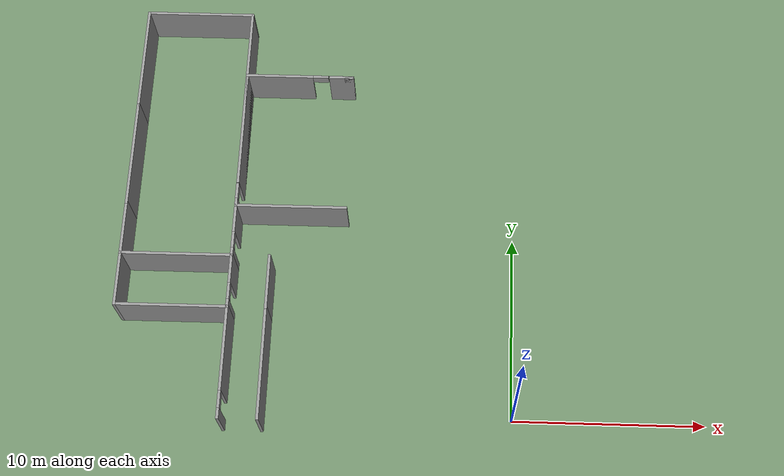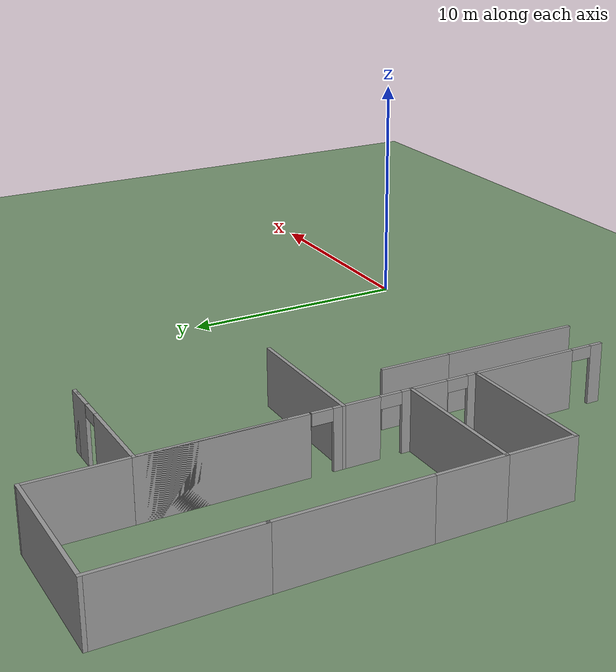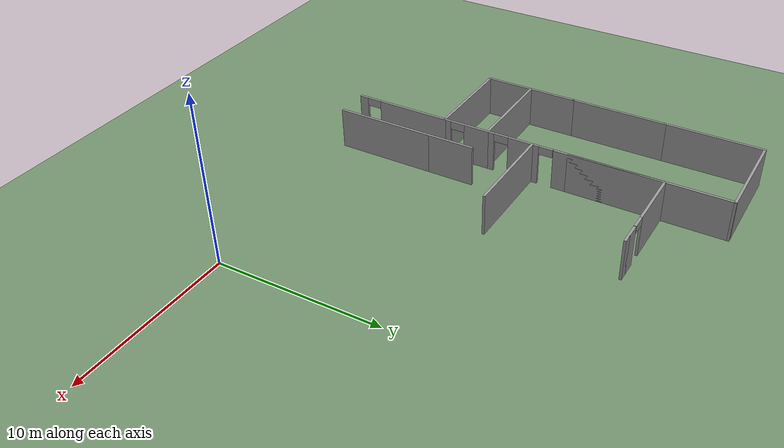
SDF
<sdf version="1.7">
 <world name="default">
  <model name="ground_plane">
   <static>1</static>
   <link name="link">
    <collision name="collision">
     <geometry><plane><normal>0 0 1</normal><size>600 600</size></plane></geometry>
     <surface>
      <contact><collide_bitmask>65535</collide_bitmask></contact>
      <friction><ode><mu>100</mu><mu2>50</mu2></ode></friction>
     </surface>
    </collision>
    <visual name="visual">
     <cast_shadows>0</cast_shadows>
     <geometry><plane><normal>0 0 1</normal><size>100 100</size></plane></geometry>
     <material><ambient>0.45 0.57 0.43 1</ambient><diffuse>0.45 0.57 0.43 1</diffuse></material>
    </visual>
   </link>
  </model>
  <model name="myhal_V3_2">
   <link name="Wall_339">
    <pose>-17.55 20.325 0 0 -0 3.14159</pose>
    <visual name="Wall_339_Visual">
     <pose>0 0 1.25 0 -0 0</pose>
     <geometry><box><size>6 0.15 2.5</size></box></geometry>
     <material>
      <script><uri>file://media/materials/scripts/gazebo.material</uri><name>Gazebo/Grey</name></script>
      <ambient>1 1 1 1</ambient>
      <shader type="pixel"/>
     </material>
     <meta><layer>0</layer></meta>
    </visual>
    <collision name="Wall_339_Collision">
     <pose>0 0 1.25 0 -0 0</pose>
     <geometry><box><size>6 0.15 2.5</size></box></geometry>
     <surface>
      <friction>
       <ode><mu>1</mu><mu2>1</mu2><fdir1>0 0 0</fdir1><slip1>0</slip1><slip2>0</slip2></ode>
       <torsional>
        <coefficient>1</coefficient>
        <patch_radius>0</patch_radius>
        <surface_radius>0</surface_radius>
        <use_patch_radius>1</use_patch_radius>
        <ode><slip>0</slip></ode>
       </torsional>
      </friction>
      <bounce><restitution_coefficient>0</restitution_coefficient><threshold>1e+06</threshold></bounce>
      <contact>
       <collide_without_contact>0</collide_without_contact>
       <collide_without_contact_bitmask>1</collide_without_contact_bitmask>
       <collide_bitmask>1</collide_bitmask>
       <ode>
        <soft_cfm>0</soft_cfm>
        <soft_erp>0.2</soft_erp>
        <kp>1e+13</kp>
        <kd>1</kd>
        <max_vel>0.01</max_vel>
        <min_depth>0</min_depth>
       </ode>
       <bullet>
        <split_impulse>1</split_impulse>
        <split_impulse_penetration_threshold>-0.01</split_impulse_penetration_threshold>
        <soft_cfm>0</soft_cfm>
        <soft_erp>0.2</soft_erp>
        <kp>1e+13</kp>
        <kd>1</kd>
       </bullet>
      </contact>
     </surface>
    </collision>
   </link>
   <link name="Wall_341">
    <pose>-20.475 17.4 0 0 0 -1.5708</pose>
    <visual name="Wall_341_Visual">
     <pose>0 0 1.25 0 -0 0</pose>
     <geometry><box><size>6 0.15 2.5</size></box></geometry>
     <material>
      <script><uri>file://media/materials/scripts/gazebo.material</uri><name>Gazebo/Grey</name></script>
      <ambient>1 1 1 1</ambient>
      <shader type="pixel"/>
     </material>
     <meta><layer>0</layer></meta>
    </visual>
    <collision name="Wall_341_Collision">
     <pose>0 0 1.25 0 -0 0</pose>
     <geometry><box><size>6 0.15 2.5</size></box></geometry>
     <surface>
      <friction>
       <ode><mu>1</mu><mu2>1</mu2><fdir1>0 0 0</fdir1><slip1>0</slip1><slip2>0</slip2></ode>
       <torsional>
        <coefficient>1</coefficient>
        <patch_radius>0</patch_radius>
        <surface_radius>0</surface_radius>
        <use_patch_radius>1</use_patch_radius>
        <ode><slip>0</slip></ode>
       </torsional>
      </friction>
      <bounce><restitution_coefficient>0</restitution_coefficient><threshold>1e+06</threshold></bounce>
      <contact>
       <collide_without_contact>0</collide_without_contact>
       <collide_without_contact_bitmask>1</collide_without_contact_bitmask>
       <collide_bitmask>1</collide_bitmask>
       <ode>
        <soft_cfm>0</soft_cfm>
        <soft_erp>0.2</soft_erp>
        <kp>1e+13</kp>
        <kd>1</kd>
        <max_vel>0.01</max_vel>
        <min_depth>0</min_depth>
       </ode>
       <bullet>
        <split_impulse>1</split_impulse>
        <split_impulse_penetration_threshold>-0.01</split_impulse_penetration_threshold>
        <soft_cfm>0</soft_cfm>
        <soft_erp>0.2</soft_erp>
        <kp>1e+13</kp>
        <kd>1</kd>
       </bullet>
      </contact>
     </surface>
    </collision>
   </link>
   <link name="Wall_342">
    <pose>-20.475 11.55 0 0 0 -1.5708</pose>
    <visual name="Wall_342_Visual">
     <pose>0 0 1.25 0 -0 0</pose>
     <geometry><box><size>6 0.15 2.5</size></box></geometry>
     <material>
      <script><uri>file://media/materials/scripts/gazebo.material</uri><name>Gazebo/Grey</name></script>
      <ambient>1 1 1 1</ambient>
      <shader type="pixel"/>
     </material>
     <meta><layer>0</layer></meta>
    </visual>
    <collision name="Wall_342_Collision">
     <pose>0 0 1.25 0 -0 0</pose>
     <geometry><box><size>6 0.15 2.5</size></box></geometry>
     <surface>
      <friction>
       <ode><mu>1</mu><mu2>1</mu2><fdir1>0 0 0</fdir1><slip1>0</slip1><slip2>0</slip2></ode>
       <torsional>
        <coefficient>1</coefficient>
        <patch_radius>0</patch_radius>
        <surface_radius>0</surface_radius>
        <use_patch_radius>1</use_patch_radius>
        <ode><slip>0</slip></ode>
       </torsional>
      </friction>
      <bounce><restitution_coefficient>0</restitution_coefficient><threshold>1e+06</threshold></bounce>
      <contact>
       <collide_without_contact>0</collide_without_contact>
       <collide_without_contact_bitmask>1</collide_without_contact_bitmask>
       <collide_bitmask>1</collide_bitmask>
       <ode>
        <soft_cfm>0</soft_cfm>
        <soft_erp>0.2</soft_erp>
        <kp>1e+13</kp>
        <kd>1</kd>
        <max_vel>0.01</max_vel>
        <min_depth>0</min_depth>
       </ode>
       <bullet>
        <split_impulse>1</split_impulse>
        <split_impulse_penetration_threshold>-0.01</split_impulse_penetration_threshold>
        <soft_cfm>0</soft_cfm>
        <soft_erp>0.2</soft_erp>
        <kp>1e+13</kp>
        <kd>1</kd>
       </bullet>
      </contact>
     </surface>
    </collision>
   </link>
   <link name="Wall_343">
    <pose>-20.475 7.2 0 0 0 -1.5708</pose>
    <visual name="Wall_343_Visual">
     <pose>0 0 1.25 0 -0 0</pose>
     <geometry><box><size>3 0.15 2.5</size></box></geometry>
     <material>
      <script><uri>file://media/materials/scripts/gazebo.material</uri><name>Gazebo/Grey</name></script>
      <ambient>1 1 1 1</ambient>
      <shader type="pixel"/>
     </material>
     <meta><layer>0</layer></meta>
    </visual>
    <collision name="Wall_343_Collision">
     <pose>0 0 1.25 0 -0 0</pose>
     <geometry><box><size>3 0.15 2.5</size></box></geometry>
     <surface>
      <friction>
       <ode><mu>1</mu><mu2>1</mu2><fdir1>0 0 0</fdir1><slip1>0</slip1><slip2>0</slip2></ode>
       <torsional>
        <coefficient>1</coefficient>
        <patch_radius>0</patch_radius>
        <surface_radius>0</surface_radius>
        <use_patch_radius>1</use_patch_radius>
        <ode><slip>0</slip></ode>
       </torsional>
      </friction>
      <bounce><restitution_coefficient>0</restitution_coefficient><threshold>1e+06</threshold></bounce>
      <contact>
       <collide_without_contact>0</collide_without_contact>
       <collide_without_contact_bitmask>1</collide_without_contact_bitmask>
       <collide_bitmask>1</collide_bitmask>
       <ode>
        <soft_cfm>0</soft_cfm>
        <soft_erp>0.2</soft_erp>
        <kp>1e+13</kp>
        <kd>1</kd>
        <max_vel>0.01</max_vel>
        <min_depth>0</min_depth>
       </ode>
       <bullet>
        <split_impulse>1</split_impulse>
        <split_impulse_penetration_threshold>-0.01</split_impulse_penetration_threshold>
        <soft_cfm>0</soft_cfm>
        <soft_erp>0.2</soft_erp>
        <kp>1e+13</kp>
        <kd>1</kd>
       </bullet>
      </contact>
     </surface>
    </collision>
   </link>
   <link name="Wall_344">
    <pose>-20.475 4.35 0 0 0 -1.5708</pose>
    <visual name="Wall_344_Visual">
     <pose>0 0 1.25 0 -0 0</pose>
     <geometry><box><size>3 0.15 2.5</size></box></geometry>
     <material>
      <script><uri>file://media/materials/scripts/gazebo.material</uri><name>Gazebo/Grey</name></script>
      <ambient>1 1 1 1</ambient>
      <shader type="pixel"/>
     </material>
     <meta><layer>0</layer></meta>
    </visual>
    <collision name="Wall_344_Collision">
     <pose>0 0 1.25 0 -0 0</pose>
     <geometry><box><size>3 0.15 2.5</size></box></geometry>
     <surface>
      <friction>
       <ode><mu>1</mu><mu2>1</mu2><fdir1>0 0 0</fdir1><slip1>0</slip1><slip2>0</slip2></ode>
       <torsional>
        <coefficient>1</coefficient>
        <patch_radius>0</patch_radius>
        <surface_radius>0</surface_radius>
        <use_patch_radius>1</use_patch_radius>
        <ode><slip>0</slip></ode>
       </torsional>
      </friction>
      <bounce><restitution_coefficient>0</restitution_coefficient><threshold>1e+06</threshold></bounce>
      <contact>
       <collide_without_contact>0</collide_without_contact>
       <collide_without_contact_bitmask>1</collide_without_contact_bitmask>
       <collide_bitmask>1</collide_bitmask>
       <ode>
        <soft_cfm>0</soft_cfm>
        <soft_erp>0.2</soft_erp>
        <kp>1e+13</kp>
        <kd>1</kd>
        <max_vel>0.01</max_vel>
        <min_depth>0</min_depth>
       </ode>
       <bullet>
        <split_impulse>1</split_impulse>
        <split_impulse_penetration_threshold>-0.01</split_impulse_penetration_threshold>
        <soft_cfm>0</soft_cfm>
        <soft_erp>0.2</soft_erp>
        <kp>1e+13</kp>
        <kd>1</kd>
       </bullet>
      </contact>
     </surface>
    </collision>
   </link>
   <link name="Wall_358">
    <pose>-14.625 18.4 0 0 -0 1.5708</pose>
    <visual name="Wall_358_Visual">
     <pose>0 0 1.25 0 -0 0</pose>
     <geometry><box><size>4 0.15 2.5</size></box></geometry>
     <material>
      <script><uri>file://media/materials/scripts/gazebo.material</uri><name>Gazebo/Grey</name></script>
      <ambient>1 1 1 1</ambient>
      <shader type="pixel"/>
     </material>
     <meta><layer>0</layer></meta>
    </visual>
    <collision name="Wall_358_Collision">
     <pose>0 0 1.25 0 -0 0</pose>
     <geometry><box><size>4 0.15 2.5</size></box></geometry>
     <surface>
      <friction>
       <ode><mu>1</mu><mu2>1</mu2><fdir1>0 0 0</fdir1><slip1>0</slip1><slip2>0</slip2></ode>
       <torsional>
        <coefficient>1</coefficient>
        <patch_radius>0</patch_radius>
        <surface_radius>0</surface_radius>
        <use_patch_radius>1</use_patch_radius>
        <ode><slip>0</slip></ode>
       </torsional>
      </friction>
      <bounce><restitution_coefficient>0</restitution_coefficient><threshold>1e+06</threshold></bounce>
      <contact>
       <collide_without_contact>0</collide_without_contact>
       <collide_without_contact_bitmask>1</collide_without_contact_bitmask>
       <collide_bitmask>1</collide_bitmask>
       <ode>
        <soft_cfm>0</soft_cfm>
        <soft_erp>0.2</soft_erp>
        <kp>1e+13</kp>
        <kd>1</kd>
        <max_vel>0.01</max_vel>
        <min_depth>0</min_depth>
       </ode>
       <bullet>
        <split_impulse>1</split_impulse>
        <split_impulse_penetration_threshold>-0.01</split_impulse_penetration_threshold>
        <soft_cfm>0</soft_cfm>
        <soft_erp>0.2</soft_erp>
        <kp>1e+13</kp>
        <kd>1</kd>
       </bullet>
      </contact>
     </surface>
    </collision>
   </link>
   <link name="Wall_360">
    <pose>-11.7 16.475 0 0 -0 0</pose>
    <visual name="Wall_360_Visual_0">
     <pose>-1.13429 0 1.25 0 -0 0</pose>
     <geometry><box><size>3.73142 0.15 2.5</size></box></geometry>
     <material>
      <script><uri>file://media/materials/scripts/gazebo.material</uri><name>Gazebo/Grey</name></script>
      <ambient>1 1 1 1</ambient>
      <shader type="pixel"/>
     </material>
     <meta><layer>0</layer></meta>
    </visual>
    <visual name="Wall_360_Visual_1">
     <pose>2.31571 0 1.25 0 -0 0</pose>
     <geometry><box><size>1.36858 0.15 2.5</size></box></geometry>
     <material>
      <script><uri>file://media/materials/scripts/gazebo.material</uri><name>Gazebo/Grey</name></script>
      <ambient>1 1 1 1</ambient>
      <shader type="pixel"/>
     </material>
     <meta><layer>0</layer></meta>
    </visual>
    <visual name="Wall_360_Visual_2">
     <pose>2.74704 0 1.25 0 -0 0</pose>
     <geometry><box><size>0.505924 0.15 2.5</size></box></geometry>
     <material>
      <script><uri>file://media/materials/scripts/gazebo.material</uri><name>Gazebo/Grey</name></script>
      <ambient>1 1 1 1</ambient>
      <shader type="pixel"/>
     </material>
     <meta><layer>0</layer></meta>
    </visual>
    <visual name="Wall_360_Visual_3">
     <pose>1.16275 0 2.25 0 -0 0</pose>
     <geometry><box><size>0.862653 0.15 0.5</size></box></geometry>
     <material>
      <script><uri>file://media/materials/scripts/gazebo.material</uri><name>Gazebo/Grey</name></script>
      <ambient>1 1 1 1</ambient>
      <shader type="pixel"/>
     </material>
     <meta><layer>0</layer></meta>
    </visual>
    <collision name="Wall_360_Collision_0">
     <pose>-1.13429 0 1.25 0 -0 0</pose>
     <geometry><box><size>3.73142 0.15 2.5</size></box></geometry>
     <surface>
      <friction>
       <ode><mu>1</mu><mu2>1</mu2><fdir1>0 0 0</fdir1><slip1>0</slip1><slip2>0</slip2></ode>
       <torsional>
        <coefficient>1</coefficient>
        <patch_radius>0</patch_radius>
        <surface_radius>0</surface_radius>
        <use_patch_radius>1</use_patch_radius>
        <ode><slip>0</slip></ode>
       </torsional>
      </friction>
      <bounce><restitution_coefficient>0</restitution_coefficient><threshold>1e+06</threshold></bounce>
      <contact>
       <collide_without_contact>0</collide_without_contact>
       <collide_without_contact_bitmask>1</collide_without_contact_bitmask>
       <collide_bitmask>1</collide_bitmask>
       <ode>
        <soft_cfm>0</soft_cfm>
        <soft_erp>0.2</soft_erp>
        <kp>1e+13</kp>
        <kd>1</kd>
        <max_vel>0.01</max_vel>
        <min_depth>0</min_depth>
       </ode>
       <bullet>
        <split_impulse>1</split_impulse>
        <split_impulse_penetration_threshold>-0.01</split_impulse_penetration_threshold>
        <soft_cfm>0</soft_cfm>
        <soft_erp>0.2</soft_erp>
        <kp>1e+13</kp>
        <kd>1</kd>
       </bullet>
      </contact>
     </surface>
    </collision>
    <collision name="Wall_360_Collision_1">
     <pose>2.31571 0 1.25 0 -0 0</pose>
     <geometry><box><size>1.36858 0.15 2.5</size></box></geometry>
     <surface>
      <friction>
       <ode><mu>1</mu><mu2>1</mu2><fdir1>0 0 0</fdir1><slip1>0</slip1><slip2>0</slip2></ode>
       <torsional>
        <coefficient>1</coefficient>
        <patch_radius>0</patch_radius>
        <surface_radius>0</surface_radius>
        <use_patch_radius>1</use_patch_radius>
        <ode><slip>0</slip></ode>
       </torsional>
      </friction>
      <bounce><restitution_coefficient>0</restitution_coefficient><threshold>1e+06</threshold></bounce>
      <contact>
       <collide_without_contact>0</collide_without_contact>
       <collide_without_contact_bitmask>1</collide_without_contact_bitmask>
       <collide_bitmask>1</collide_bitmask>
       <ode>
        <soft_cfm>0</soft_cfm>
        <soft_erp>0.2</soft_erp>
        <kp>1e+13</kp>
        <kd>1</kd>
        <max_vel>0.01</max_vel>
        <min_depth>0</min_depth>
       </ode>
       <bullet>
        <split_impulse>1</split_impulse>
        <split_impulse_penetration_threshold>-0.01</split_impulse_penetration_threshold>
        <soft_cfm>0</soft_cfm>
        <soft_erp>0.2</soft_erp>
        <kp>1e+13</kp>
        <kd>1</kd>
       </bullet>
      </contact>
     </surface>
    </collision>
    <collision name="Wall_360_Collision_2">
     <pose>2.74704 0 1.25 0 -0 0</pose>
     <geometry><box><size>0.505924 0.15 2.5</size></box></geometry>
     <surface>
      <friction>
       <ode><mu>1</mu><mu2>1</mu2><fdir1>0 0 0</fdir1><slip1>0</slip1><slip2>0</slip2></ode>
       <torsional>
        <coefficient>1</coefficient>
        <patch_radius>0</patch_radius>
        <surface_radius>0</surface_radius>
        <use_patch_radius>1</use_patch_radius>
        <ode><slip>0</slip></ode>
       </torsional>
      </friction>
      <bounce><restitution_coefficient>0</restitution_coefficient><threshold>1e+06</threshold></bounce>
      <contact>
       <collide_without_contact>0</collide_without_contact>
       <collide_without_contact_bitmask>1</collide_without_contact_bitmask>
       <collide_bitmask>1</collide_bitmask>
       <ode>
        <soft_cfm>0</soft_cfm>
        <soft_erp>0.2</soft_erp>
        <kp>1e+13</kp>
        <kd>1</kd>
        <max_vel>0.01</max_vel>
        <min_depth>0</min_depth>
       </ode>
       <bullet>
        <split_impulse>1</split_impulse>
        <split_impulse_penetration_threshold>-0.01</split_impulse_penetration_threshold>
        <soft_cfm>0</soft_cfm>
        <soft_erp>0.2</soft_erp>
        <kp>1e+13</kp>
        <kd>1</kd>
       </bullet>
      </contact>
     </surface>
    </collision>
    <collision name="Wall_360_Collision_3">
     <pose>1.16275 0 2.25 0 -0 0</pose>
     <geometry><box><size>0.862653 0.15 0.5</size></box></geometry>
     <surface>
      <friction>
       <ode><mu>1</mu><mu2>1</mu2><fdir1>0 0 0</fdir1><slip1>0</slip1><slip2>0</slip2></ode>
       <torsional>
        <coefficient>1</coefficient>
        <patch_radius>0</patch_radius>
        <surface_radius>0</surface_radius>
        <use_patch_radius>1</use_patch_radius>
        <ode><slip>0</slip></ode>
       </torsional>
      </friction>
      <bounce><restitution_coefficient>0</restitution_coefficient><threshold>1e+06</threshold></bounce>
      <contact>
       <collide_without_contact>0</collide_without_contact>
       <collide_without_contact_bitmask>1</collide_without_contact_bitmask>
       <collide_bitmask>1</collide_bitmask>
       <ode>
        <soft_cfm>0</soft_cfm>
        <soft_erp>0.2</soft_erp>
        <kp>1e+13</kp>
        <kd>1</kd>
        <max_vel>0.01</max_vel>
        <min_depth>0</min_depth>
       </ode>
       <bullet>
        <split_impulse>1</split_impulse>
        <split_impulse_penetration_threshold>-0.01</split_impulse_penetration_threshold>
        <soft_cfm>0</soft_cfm>
        <soft_erp>0.2</soft_erp>
        <kp>1e+13</kp>
        <kd>1</kd>
       </bullet>
      </contact>
     </surface>
    </collision>
   </link>
   <link name="Wall_363">
    <pose>-11.7 8.625 0 0 -0 3.14159</pose>
    <visual name="Wall_363_Visual">
     <pose>0 0 1.25 0 -0 0</pose>
     <geometry><box><size>6 0.15 2.5</size></box></geometry>
     <material>
      <script><uri>file://media/materials/scripts/gazebo.material</uri><name>Gazebo/Grey</name></script>
      <ambient>1 1 1 1</ambient>
      <shader type="pixel"/>
     </material>
     <meta><layer>0</layer></meta>
    </visual>
    <collision name="Wall_363_Collision">
     <pose>0 0 1.25 0 -0 0</pose>
     <geometry><box><size>6 0.15 2.5</size></box></geometry>
     <surface>
      <friction>
       <ode><mu>1</mu><mu2>1</mu2><fdir1>0 0 0</fdir1><slip1>0</slip1><slip2>0</slip2></ode>
       <torsional>
        <coefficient>1</coefficient>
        <patch_radius>0</patch_radius>
        <surface_radius>0</surface_radius>
        <use_patch_radius>1</use_patch_radius>
        <ode><slip>0</slip></ode>
       </torsional>
      </friction>
      <bounce><restitution_coefficient>0</restitution_coefficient><threshold>1e+06</threshold></bounce>
      <contact>
       <collide_without_contact>0</collide_without_contact>
       <collide_without_contact_bitmask>1</collide_without_contact_bitmask>
       <collide_bitmask>1</collide_bitmask>
       <ode>
        <soft_cfm>0</soft_cfm>
        <soft_erp>0.2</soft_erp>
        <kp>1e+13</kp>
        <kd>1</kd>
        <max_vel>0.01</max_vel>
        <min_depth>0</min_depth>
       </ode>
       <bullet>
        <split_impulse>1</split_impulse>
        <split_impulse_penetration_threshold>-0.01</split_impulse_penetration_threshold>
        <soft_cfm>0</soft_cfm>
        <soft_erp>0.2</soft_erp>
        <kp>1e+13</kp>
        <kd>1</kd>
       </bullet>
      </contact>
     </surface>
    </collision>
   </link>
   <link name="Wall_364">
    <pose>-14.625 12.55 0 0 -0 1.5708</pose>
    <visual name="Wall_364_Visual_0">
     <pose>-3.75018 0 1.25 0 -0 0</pose>
     <geometry><box><size>0.499636 0.15 2.5</size></box></geometry>
     <material>
      <script><uri>file://media/materials/scripts/gazebo.material</uri><name>Gazebo/Grey</name></script>
      <ambient>1 1 1 1</ambient>
      <shader type="pixel"/>
     </material>
     <meta><layer>0</layer></meta>
    </visual>
    <visual name="Wall_364_Visual_1">
     <pose>0.699818 0 1.25 0 -0 0</pose>
     <geometry><box><size>6.60036 0.15 2.5</size></box></geometry>
     <material>
      <script><uri>file://media/materials/scripts/gazebo.material</uri><name>Gazebo/Grey</name></script>
      <ambient>1 1 1 1</ambient>
      <shader type="pixel"/>
     </material>
     <meta><layer>0</layer></meta>
    </visual>
    <visual name="Wall_364_Visual_2">
     <pose>1.13114 0 1.25 0 -0 0</pose>
     <geometry><box><size>5.73771 0.15 2.5</size></box></geometry>
     <material>
      <script><uri>file://media/materials/scripts/gazebo.material</uri><name>Gazebo/Grey</name></script>
      <ambient>1 1 1 1</ambient>
      <shader type="pixel"/>
     </material>
     <meta><layer>0</layer></meta>
    </visual>
    <visual name="Wall_364_Visual_3">
     <pose>-3.06904 0 2.25 0 -0 0</pose>
     <geometry><box><size>0.862653 0.15 0.5</size></box></geometry>
     <material>
      <script><uri>file://media/materials/scripts/gazebo.material</uri><name>Gazebo/Grey</name></script>
      <ambient>1 1 1 1</ambient>
      <shader type="pixel"/>
     </material>
     <meta><layer>0</layer></meta>
    </visual>
    <collision name="Wall_364_Collision_0">
     <pose>-3.75018 0 1.25 0 -0 0</pose>
     <geometry><box><size>0.499636 0.15 2.5</size></box></geometry>
     <surface>
      <friction>
       <ode><mu>1</mu><mu2>1</mu2><fdir1>0 0 0</fdir1><slip1>0</slip1><slip2>0</slip2></ode>
       <torsional>
        <coefficient>1</coefficient>
        <patch_radius>0</patch_radius>
        <surface_radius>0</surface_radius>
        <use_patch_radius>1</use_patch_radius>
        <ode><slip>0</slip></ode>
       </torsional>
      </friction>
      <bounce><restitution_coefficient>0</restitution_coefficient><threshold>1e+06</threshold></bounce>
      <contact>
       <collide_without_contact>0</collide_without_contact>
       <collide_without_contact_bitmask>1</collide_without_contact_bitmask>
       <collide_bitmask>1</collide_bitmask>
       <ode>
        <soft_cfm>0</soft_cfm>
        <soft_erp>0.2</soft_erp>
        <kp>1e+13</kp>
        <kd>1</kd>
        <max_vel>0.01</max_vel>
        <min_depth>0</min_depth>
       </ode>
       <bullet>
        <split_impulse>1</split_impulse>
        <split_impulse_penetration_threshold>-0.01</split_impulse_penetration_threshold>
        <soft_cfm>0</soft_cfm>
        <soft_erp>0.2</soft_erp>
        <kp>1e+13</kp>
        <kd>1</kd>
       </bullet>
      </contact>
     </surface>
    </collision>
    <collision name="Wall_364_Collision_1">
     <pose>0.699818 0 1.25 0 -0 0</pose>
     <geometry><box><size>6.60036 0.15 2.5</size></box></geometry>
     <surface>
      <friction>
       <ode><mu>1</mu><mu2>1</mu2><fdir1>0 0 0</fdir1><slip1>0</slip1><slip2>0</slip2></ode>
       <torsional>
        <coefficient>1</coefficient>
        <patch_radius>0</patch_radius>
        <surface_radius>0</surface_radius>
        <use_patch_radius>1</use_patch_radius>
        <ode><slip>0</slip></ode>
       </torsional>
      </friction>
      <bounce><restitution_coefficient>0</restitution_coefficient><threshold>1e+06</threshold></bounce>
      <contact>
       <collide_without_contact>0</collide_without_contact>
       <collide_without_contact_bitmask>1</collide_without_contact_bitmask>
       <collide_bitmask>1</collide_bitmask>
       <ode>
        <soft_cfm>0</soft_cfm>
        <soft_erp>0.2</soft_erp>
        <kp>1e+13</kp>
        <kd>1</kd>
        <max_vel>0.01</max_vel>
        <min_depth>0</min_depth>
       </ode>
       <bullet>
        <split_impulse>1</split_impulse>
        <split_impulse_penetration_threshold>-0.01</split_impulse_penetration_threshold>
        <soft_cfm>0</soft_cfm>
        <soft_erp>0.2</soft_erp>
        <kp>1e+13</kp>
        <kd>1</kd>
       </bullet>
      </contact>
     </surface>
    </collision>
    <collision name="Wall_364_Collision_2">
     <pose>1.13114 0 1.25 0 -0 0</pose>
     <geometry><box><size>5.73771 0.15 2.5</size></box></geometry>
     <surface>
      <friction>
       <ode><mu>1</mu><mu2>1</mu2><fdir1>0 0 0</fdir1><slip1>0</slip1><slip2>0</slip2></ode>
       <torsional>
        <coefficient>1</coefficient>
        <patch_radius>0</patch_radius>
        <surface_radius>0</surface_radius>
        <use_patch_radius>1</use_patch_radius>
        <ode><slip>0</slip></ode>
       </torsional>
      </friction>
      <bounce><restitution_coefficient>0</restitution_coefficient><threshold>1e+06</threshold></bounce>
      <contact>
       <collide_without_contact>0</collide_without_contact>
       <collide_without_contact_bitmask>1</collide_without_contact_bitmask>
       <collide_bitmask>1</collide_bitmask>
       <ode>
        <soft_cfm>0</soft_cfm>
        <soft_erp>0.2</soft_erp>
        <kp>1e+13</kp>
        <kd>1</kd>
        <max_vel>0.01</max_vel>
        <min_depth>0</min_depth>
       </ode>
       <bullet>
        <split_impulse>1</split_impulse>
        <split_impulse_penetration_threshold>-0.01</split_impulse_penetration_threshold>
        <soft_cfm>0</soft_cfm>
        <soft_erp>0.2</soft_erp>
        <kp>1e+13</kp>
        <kd>1</kd>
       </bullet>
      </contact>
     </surface>
    </collision>
    <collision name="Wall_364_Collision_3">
     <pose>-3.06904 0 2.25 0 -0 0</pose>
     <geometry><box><size>0.862653 0.15 0.5</size></box></geometry>
     <surface>
      <friction>
       <ode><mu>1</mu><mu2>1</mu2><fdir1>0 0 0</fdir1><slip1>0</slip1><slip2>0</slip2></ode>
       <torsional>
        <coefficient>1</coefficient>
        <patch_radius>0</patch_radius>
        <surface_radius>0</surface_radius>
        <use_patch_radius>1</use_patch_radius>
        <ode><slip>0</slip></ode>
       </torsional>
      </friction>
      <bounce><restitution_coefficient>0</restitution_coefficient><threshold>1e+06</threshold></bounce>
      <contact>
       <collide_without_contact>0</collide_without_contact>
       <collide_without_contact_bitmask>1</collide_without_contact_bitmask>
       <collide_bitmask>1</collide_bitmask>
       <ode>
        <soft_cfm>0</soft_cfm>
        <soft_erp>0.2</soft_erp>
        <kp>1e+13</kp>
        <kd>1</kd>
        <max_vel>0.01</max_vel>
        <min_depth>0</min_depth>
       </ode>
       <bullet>
        <split_impulse>1</split_impulse>
        <split_impulse_penetration_threshold>-0.01</split_impulse_penetration_threshold>
        <soft_cfm>0</soft_cfm>
        <soft_erp>0.2</soft_erp>
        <kp>1e+13</kp>
        <kd>1</kd>
       </bullet>
      </contact>
     </surface>
    </collision>
   </link>
   <link name="Wall_402">
    <pose>-14.625 7.2 0 0 0 -1.5708</pose>
    <visual name="Wall_402_Visual_0">
     <pose>-0.707028 0 1.25 0 -0 0</pose>
     <geometry><box><size>1.58594 0.15 2.5</size></box></geometry>
     <material>
      <script><uri>file://media/materials/scripts/gazebo.material</uri><name>Gazebo/Grey</name></script>
      <ambient>1 1 1 1</ambient>
      <shader type="pixel"/>
     </material>
     <meta><layer>0</layer></meta>
    </visual>
    <visual name="Wall_402_Visual_1">
     <pose>1.24297 0 1.25 0 -0 0</pose>
     <geometry><box><size>0.514056 0.15 2.5</size></box></geometry>
     <material>
      <script><uri>file://media/materials/scripts/gazebo.material</uri><name>Gazebo/Grey</name></script>
      <ambient>1 1 1 1</ambient>
      <shader type="pixel"/>
     </material>
     <meta><layer>0</layer></meta>
    </visual>
    <visual name="Wall_402_Visual_2">
     <pose>0.535944 0 2.25 0 -0 0</pose>
     <geometry><box><size>0.9 0.15 0.5</size></box></geometry>
     <material>
      <script><uri>file://media/materials/scripts/gazebo.material</uri><name>Gazebo/Grey</name></script>
      <ambient>1 1 1 1</ambient>
      <shader type="pixel"/>
     </material>
     <meta><layer>0</layer></meta>
    </visual>
    <collision name="Wall_402_Collision_0">
     <pose>-0.707028 0 1.25 0 -0 0</pose>
     <geometry><box><size>1.58594 0.15 2.5</size></box></geometry>
     <surface>
      <friction>
       <ode><mu>1</mu><mu2>1</mu2><fdir1>0 0 0</fdir1><slip1>0</slip1><slip2>0</slip2></ode>
       <torsional>
        <coefficient>1</coefficient>
        <patch_radius>0</patch_radius>
        <surface_radius>0</surface_radius>
        <use_patch_radius>1</use_patch_radius>
        <ode><slip>0</slip></ode>
       </torsional>
      </friction>
      <bounce><restitution_coefficient>0</restitution_coefficient><threshold>1e+06</threshold></bounce>
      <contact>
       <collide_without_contact>0</collide_without_contact>
       <collide_without_contact_bitmask>1</collide_without_contact_bitmask>
       <collide_bitmask>1</collide_bitmask>
       <ode>
        <soft_cfm>0</soft_cfm>
        <soft_erp>0.2</soft_erp>
        <kp>1e+13</kp>
        <kd>1</kd>
        <max_vel>0.01</max_vel>
        <min_depth>0</min_depth>
       </ode>
       <bullet>
        <split_impulse>1</split_impulse>
        <split_impulse_penetration_threshold>-0.01</split_impulse_penetration_threshold>
        <soft_cfm>0</soft_cfm>
        <soft_erp>0.2</soft_erp>
        <kp>1e+13</kp>
        <kd>1</kd>
       </bullet>
      </contact>
     </surface>
    </collision>
    <collision name="Wall_402_Collision_1">
     <pose>1.24297 0 1.25 0 -0 0</pose>
     <geometry><box><size>0.514056 0.15 2.5</size></box></geometry>
     <surface>
      <friction>
       <ode><mu>1</mu><mu2>1</mu2><fdir1>0 0 0</fdir1><slip1>0</slip1><slip2>0</slip2></ode>
       <torsional>
        <coefficient>1</coefficient>
        <patch_radius>0</patch_radius>
        <surface_radius>0</surface_radius>
        <use_patch_radius>1</use_patch_radius>
        <ode><slip>0</slip></ode>
       </torsional>
      </friction>
      <bounce><restitution_coefficient>0</restitution_coefficient><threshold>1e+06</threshold></bounce>
      <contact>
       <collide_without_contact>0</collide_without_contact>
       <collide_without_contact_bitmask>1</collide_without_contact_bitmask>
       <collide_bitmask>1</collide_bitmask>
       <ode>
        <soft_cfm>0</soft_cfm>
        <soft_erp>0.2</soft_erp>
        <kp>1e+13</kp>
        <kd>1</kd>
        <max_vel>0.01</max_vel>
        <min_depth>0</min_depth>
       </ode>
       <bullet>
        <split_impulse>1</split_impulse>
        <split_impulse_penetration_threshold>-0.01</split_impulse_penetration_threshold>
        <soft_cfm>0</soft_cfm>
        <soft_erp>0.2</soft_erp>
        <kp>1e+13</kp>
        <kd>1</kd>
       </bullet>
      </contact>
     </surface>
    </collision>
    <collision name="Wall_402_Collision_2">
     <pose>0.535944 0 2.25 0 -0 0</pose>
     <geometry><box><size>0.9 0.15 0.5</size></box></geometry>
     <surface>
      <friction>
       <ode><mu>1</mu><mu2>1</mu2><fdir1>0 0 0</fdir1><slip1>0</slip1><slip2>0</slip2></ode>
       <torsional>
        <coefficient>1</coefficient>
        <patch_radius>0</patch_radius>
        <surface_radius>0</surface_radius>
        <use_patch_radius>1</use_patch_radius>
        <ode><slip>0</slip></ode>
       </torsional>
      </friction>
      <bounce><restitution_coefficient>0</restitution_coefficient><threshold>1e+06</threshold></bounce>
      <contact>
       <collide_without_contact>0</collide_without_contact>
       <collide_without_contact_bitmask>1</collide_without_contact_bitmask>
       <collide_bitmask>1</collide_bitmask>
       <ode>
        <soft_cfm>0</soft_cfm>
        <soft_erp>0.2</soft_erp>
        <kp>1e+13</kp>
        <kd>1</kd>
        <max_vel>0.01</max_vel>
        <min_depth>0</min_depth>
       </ode>
       <bullet>
        <split_impulse>1</split_impulse>
        <split_impulse_penetration_threshold>-0.01</split_impulse_penetration_threshold>
        <soft_cfm>0</soft_cfm>
        <soft_erp>0.2</soft_erp>
        <kp>1e+13</kp>
        <kd>1</kd>
       </bullet>
      </contact>
     </surface>
    </collision>
   </link>
   <link name="Wall_403">
    <pose>-17.55 5.775 0 0 -0 3.14159</pose>
    <visual name="Wall_403_Visual">
     <pose>0 0 1.25 0 -0 0</pose>
     <geometry><box><size>6 0.15 2.5</size></box></geometry>
     <material>
      <script><uri>file://media/materials/scripts/gazebo.material</uri><name>Gazebo/Grey</name></script>
      <ambient>1 1 1 1</ambient>
      <shader type="pixel"/>
     </material>
     <meta><layer>0</layer></meta>
    </visual>
    <collision name="Wall_403_Collision">
     <pose>0 0 1.25 0 -0 0</pose>
     <geometry><box><size>6 0.15 2.5</size></box></geometry>
     <surface>
      <friction>
       <ode><mu>1</mu><mu2>1</mu2><fdir1>0 0 0</fdir1><slip1>0</slip1><slip2>0</slip2></ode>
       <torsional>
        <coefficient>1</coefficient>
        <patch_radius>0</patch_radius>
        <surface_radius>0</surface_radius>
        <use_patch_radius>1</use_patch_radius>
        <ode><slip>0</slip></ode>
       </torsional>
      </friction>
      <bounce><restitution_coefficient>0</restitution_coefficient><threshold>1e+06</threshold></bounce>
      <contact>
       <collide_without_contact>0</collide_without_contact>
       <collide_without_contact_bitmask>1</collide_without_contact_bitmask>
       <collide_bitmask>1</collide_bitmask>
       <ode>
        <soft_cfm>0</soft_cfm>
        <soft_erp>0.2</soft_erp>
        <kp>1e+13</kp>
        <kd>1</kd>
        <max_vel>0.01</max_vel>
        <min_depth>0</min_depth>
       </ode>
       <bullet>
        <split_impulse>1</split_impulse>
        <split_impulse_penetration_threshold>-0.01</split_impulse_penetration_threshold>
        <soft_cfm>0</soft_cfm>
        <soft_erp>0.2</soft_erp>
        <kp>1e+13</kp>
        <kd>1</kd>
       </bullet>
      </contact>
     </surface>
    </collision>
   </link>
   <link name="Wall_405">
    <pose>-14.625 4.35 0 0 0 -1.5708</pose>
    <visual name="Wall_405_Visual_0">
     <pose>-0.698064 0 1.25 0 -0 0</pose>
     <geometry><box><size>1.60387 0.15 2.5</size></box></geometry>
     <material>
      <script><uri>file://media/materials/scripts/gazebo.material</uri><name>Gazebo/Grey</name></script>
      <ambient>1 1 1 1</ambient>
      <shader type="pixel"/>
     </material>
     <meta><layer>0</layer></meta>
    </visual>
    <visual name="Wall_405_Visual_1">
     <pose>1.25194 0 1.25 0 -0 0</pose>
     <geometry><box><size>0.496128 0.15 2.5</size></box></geometry>
     <material>
      <script><uri>file://media/materials/scripts/gazebo.material</uri><name>Gazebo/Grey</name></script>
      <ambient>1 1 1 1</ambient>
      <shader type="pixel"/>
     </material>
     <meta><layer>0</layer></meta>
    </visual>
    <visual name="Wall_405_Visual_2">
     <pose>0.553872 0 2.25 0 -0 0</pose>
     <geometry><box><size>0.9 0.15 0.5</size></box></geometry>
     <material>
      <script><uri>file://media/materials/scripts/gazebo.material</uri><name>Gazebo/Grey</name></script>
      <ambient>1 1 1 1</ambient>
      <shader type="pixel"/>
     </material>
     <meta><layer>0</layer></meta>
    </visual>
    <collision name="Wall_405_Collision_0">
     <pose>-0.698064 0 1.25 0 -0 0</pose>
     <geometry><box><size>1.60387 0.15 2.5</size></box></geometry>
     <surface>
      <friction>
       <ode><mu>1</mu><mu2>1</mu2><fdir1>0 0 0</fdir1><slip1>0</slip1><slip2>0</slip2></ode>
       <torsional>
        <coefficient>1</coefficient>
        <patch_radius>0</patch_radius>
        <surface_radius>0</surface_radius>
        <use_patch_radius>1</use_patch_radius>
        <ode><slip>0</slip></ode>
       </torsional>
      </friction>
      <bounce><restitution_coefficient>0</restitution_coefficient><threshold>1e+06</threshold></bounce>
      <contact>
       <collide_without_contact>0</collide_without_contact>
       <collide_without_contact_bitmask>1</collide_without_contact_bitmask>
       <collide_bitmask>1</collide_bitmask>
       <ode>
        <soft_cfm>0</soft_cfm>
        <soft_erp>0.2</soft_erp>
        <kp>1e+13</kp>
        <kd>1</kd>
        <max_vel>0.01</max_vel>
        <min_depth>0</min_depth>
       </ode>
       <bullet>
        <split_impulse>1</split_impulse>
        <split_impulse_penetration_threshold>-0.01</split_impulse_penetration_threshold>
        <soft_cfm>0</soft_cfm>
        <soft_erp>0.2</soft_erp>
        <kp>1e+13</kp>
        <kd>1</kd>
       </bullet>
      </contact>
     </surface>
    </collision>
    <collision name="Wall_405_Collision_1">
     <pose>1.25194 0 1.25 0 -0 0</pose>
     <geometry><box><size>0.496128 0.15 2.5</size></box></geometry>
     <surface>
      <friction>
       <ode><mu>1</mu><mu2>1</mu2><fdir1>0 0 0</fdir1><slip1>0</slip1><slip2>0</slip2></ode>
       <torsional>
        <coefficient>1</coefficient>
        <patch_radius>0</patch_radius>
        <surface_radius>0</surface_radius>
        <use_patch_radius>1</use_patch_radius>
        <ode><slip>0</slip></ode>
       </torsional>
      </friction>
      <bounce><restitution_coefficient>0</restitution_coefficient><threshold>1e+06</threshold></bounce>
      <contact>
       <collide_without_contact>0</collide_without_contact>
       <collide_without_contact_bitmask>1</collide_without_contact_bitmask>
       <collide_bitmask>1</collide_bitmask>
       <ode>
        <soft_cfm>0</soft_cfm>
        <soft_erp>0.2</soft_erp>
        <kp>1e+13</kp>
        <kd>1</kd>
        <max_vel>0.01</max_vel>
        <min_depth>0</min_depth>
       </ode>
       <bullet>
        <split_impulse>1</split_impulse>
        <split_impulse_penetration_threshold>-0.01</split_impulse_penetration_threshold>
        <soft_cfm>0</soft_cfm>
        <soft_erp>0.2</soft_erp>
        <kp>1e+13</kp>
        <kd>1</kd>
       </bullet>
      </contact>
     </surface>
    </collision>
    <collision name="Wall_405_Collision_2">
     <pose>0.553872 0 2.25 0 -0 0</pose>
     <geometry><box><size>0.9 0.15 0.5</size></box></geometry>
     <surface>
      <friction>
       <ode><mu>1</mu><mu2>1</mu2><fdir1>0 0 0</fdir1><slip1>0</slip1><slip2>0</slip2></ode>
       <torsional>
        <coefficient>1</coefficient>
        <patch_radius>0</patch_radius>
        <surface_radius>0</surface_radius>
        <use_patch_radius>1</use_patch_radius>
        <ode><slip>0</slip></ode>
       </torsional>
      </friction>
      <bounce><restitution_coefficient>0</restitution_coefficient><threshold>1e+06</threshold></bounce>
      <contact>
       <collide_without_contact>0</collide_without_contact>
       <collide_without_contact_bitmask>1</collide_without_contact_bitmask>
       <collide_bitmask>1</collide_bitmask>
       <ode>
        <soft_cfm>0</soft_cfm>
        <soft_erp>0.2</soft_erp>
        <kp>1e+13</kp>
        <kd>1</kd>
        <max_vel>0.01</max_vel>
        <min_depth>0</min_depth>
       </ode>
       <bullet>
        <split_impulse>1</split_impulse>
        <split_impulse_penetration_threshold>-0.01</split_impulse_penetration_threshold>
        <soft_cfm>0</soft_cfm>
        <soft_erp>0.2</soft_erp>
        <kp>1e+13</kp>
        <kd>1</kd>
       </bullet>
      </contact>
     </surface>
    </collision>
   </link>
   <link name="Wall_406">
    <pose>-17.55 2.925 0 0 -0 3.14159</pose>
    <visual name="Wall_406_Visual">
     <pose>0 0 1.25 0 -0 0</pose>
     <geometry><box><size>6 0.15 2.5</size></box></geometry>
     <material>
      <script><uri>file://media/materials/scripts/gazebo.material</uri><name>Gazebo/Grey</name></script>
      <ambient>1 1 1 1</ambient>
      <shader type="pixel"/>
     </material>
     <meta><layer>0</layer></meta>
    </visual>
    <collision name="Wall_406_Collision">
     <pose>0 0 1.25 0 -0 0</pose>
     <geometry><box><size>6 0.15 2.5</size></box></geometry>
     <surface>
      <friction>
       <ode><mu>1</mu><mu2>1</mu2><fdir1>0 0 0</fdir1><slip1>0</slip1><slip2>0</slip2></ode>
       <torsional>
        <coefficient>1</coefficient>
        <patch_radius>0</patch_radius>
        <surface_radius>0</surface_radius>
        <use_patch_radius>1</use_patch_radius>
        <ode><slip>0</slip></ode>
       </torsional>
      </friction>
      <bounce><restitution_coefficient>0</restitution_coefficient><threshold>1e+06</threshold></bounce>
      <contact>
       <collide_without_contact>0</collide_without_contact>
       <collide_without_contact_bitmask>1</collide_without_contact_bitmask>
       <collide_bitmask>1</collide_bitmask>
       <ode>
        <soft_cfm>0</soft_cfm>
        <soft_erp>0.2</soft_erp>
        <kp>1e+13</kp>
        <kd>1</kd>
        <max_vel>0.01</max_vel>
        <min_depth>0</min_depth>
       </ode>
       <bullet>
        <split_impulse>1</split_impulse>
        <split_impulse_penetration_threshold>-0.01</split_impulse_penetration_threshold>
        <soft_cfm>0</soft_cfm>
        <soft_erp>0.2</soft_erp>
        <kp>1e+13</kp>
        <kd>1</kd>
       </bullet>
      </contact>
     </surface>
    </collision>
   </link>
   <link name="Wall_408">
    <pose>-14.625 0 0 0 0 -1.5708</pose>
    <visual name="Wall_408_Visual_0">
     <pose>-0.728079 0 1.25 0 -0 0</pose>
     <geometry><box><size>4.54384 0.15 2.5</size></box></geometry>
     <material>
      <script><uri>file://media/materials/scripts/gazebo.material</uri><name>Gazebo/Grey</name></script>
      <ambient>1 1 1 1</ambient>
      <shader type="pixel"/>
     </material>
     <meta><layer>0</layer></meta>
    </visual>
    <visual name="Wall_408_Visual_1">
     <pose>2.72192 0 1.25 0 -0 0</pose>
     <geometry><box><size>0.556159 0.15 2.5</size></box></geometry>
     <material>
      <script><uri>file://media/materials/scripts/gazebo.material</uri><name>Gazebo/Grey</name></script>
      <ambient>1 1 1 1</ambient>
      <shader type="pixel"/>
     </material>
     <meta><layer>0</layer></meta>
    </visual>
    <visual name="Wall_408_Visual_2">
     <pose>1.99384 0 2.25 0 -0 0</pose>
     <geometry><box><size>0.9 0.15 0.5</size></box></geometry>
     <material>
      <script><uri>file://media/materials/scripts/gazebo.material</uri><name>Gazebo/Grey</name></script>
      <ambient>1 1 1 1</ambient>
      <shader type="pixel"/>
     </material>
     <meta><layer>0</layer></meta>
    </visual>
    <collision name="Wall_408_Collision_0">
     <pose>-0.728079 0 1.25 0 -0 0</pose>
     <geometry><box><size>4.54384 0.15 2.5</size></box></geometry>
     <surface>
      <friction>
       <ode><mu>1</mu><mu2>1</mu2><fdir1>0 0 0</fdir1><slip1>0</slip1><slip2>0</slip2></ode>
       <torsional>
        <coefficient>1</coefficient>
        <patch_radius>0</patch_radius>
        <surface_radius>0</surface_radius>
        <use_patch_radius>1</use_patch_radius>
        <ode><slip>0</slip></ode>
       </torsional>
      </friction>
      <bounce><restitution_coefficient>0</restitution_coefficient><threshold>1e+06</threshold></bounce>
      <contact>
       <collide_without_contact>0</collide_without_contact>
       <collide_without_contact_bitmask>1</collide_without_contact_bitmask>
       <collide_bitmask>1</collide_bitmask>
       <ode>
        <soft_cfm>0</soft_cfm>
        <soft_erp>0.2</soft_erp>
        <kp>1e+13</kp>
        <kd>1</kd>
        <max_vel>0.01</max_vel>
        <min_depth>0</min_depth>
       </ode>
       <bullet>
        <split_impulse>1</split_impulse>
        <split_impulse_penetration_threshold>-0.01</split_impulse_penetration_threshold>
        <soft_cfm>0</soft_cfm>
        <soft_erp>0.2</soft_erp>
        <kp>1e+13</kp>
        <kd>1</kd>
       </bullet>
      </contact>
     </surface>
    </collision>
    <collision name="Wall_408_Collision_1">
     <pose>2.72192 0 1.25 0 -0 0</pose>
     <geometry><box><size>0.556159 0.15 2.5</size></box></geometry>
     <surface>
      <friction>
       <ode><mu>1</mu><mu2>1</mu2><fdir1>0 0 0</fdir1><slip1>0</slip1><slip2>0</slip2></ode>
       <torsional>
        <coefficient>1</coefficient>
        <patch_radius>0</patch_radius>
        <surface_radius>0</surface_radius>
        <use_patch_radius>1</use_patch_radius>
        <ode><slip>0</slip></ode>
       </torsional>
      </friction>
      <bounce><restitution_coefficient>0</restitution_coefficient><threshold>1e+06</threshold></bounce>
      <contact>
       <collide_without_contact>0</collide_without_contact>
       <collide_without_contact_bitmask>1</collide_without_contact_bitmask>
       <collide_bitmask>1</collide_bitmask>
       <ode>
        <soft_cfm>0</soft_cfm>
        <soft_erp>0.2</soft_erp>
        <kp>1e+13</kp>
        <kd>1</kd>
        <max_vel>0.01</max_vel>
        <min_depth>0</min_depth>
       </ode>
       <bullet>
        <split_impulse>1</split_impulse>
        <split_impulse_penetration_threshold>-0.01</split_impulse_penetration_threshold>
        <soft_cfm>0</soft_cfm>
        <soft_erp>0.2</soft_erp>
        <kp>1e+13</kp>
        <kd>1</kd>
       </bullet>
      </contact>
     </surface>
    </collision>
    <collision name="Wall_408_Collision_2">
     <pose>1.99384 0 2.25 0 -0 0</pose>
     <geometry><box><size>0.9 0.15 0.5</size></box></geometry>
     <surface>
      <friction>
       <ode><mu>1</mu><mu2>1</mu2><fdir1>0 0 0</fdir1><slip1>0</slip1><slip2>0</slip2></ode>
       <torsional>
        <coefficient>1</coefficient>
        <patch_radius>0</patch_radius>
        <surface_radius>0</surface_radius>
        <use_patch_radius>1</use_patch_radius>
        <ode><slip>0</slip></ode>
       </torsional>
      </friction>
      <bounce><restitution_coefficient>0</restitution_coefficient><threshold>1e+06</threshold></bounce>
      <contact>
       <collide_without_contact>0</collide_without_contact>
       <collide_without_contact_bitmask>1</collide_without_contact_bitmask>
       <collide_bitmask>1</collide_bitmask>
       <ode>
        <soft_cfm>0</soft_cfm>
        <soft_erp>0.2</soft_erp>
        <kp>1e+13</kp>
        <kd>1</kd>
        <max_vel>0.01</max_vel>
        <min_depth>0</min_depth>
       </ode>
       <bullet>
        <split_impulse>1</split_impulse>
        <split_impulse_penetration_threshold>-0.01</split_impulse_penetration_threshold>
        <soft_cfm>0</soft_cfm>
        <soft_erp>0.2</soft_erp>
        <kp>1e+13</kp>
        <kd>1</kd>
       </bullet>
      </contact>
     </surface>
    </collision>
   </link>
   <link name="Wall_441">
    <pose>-12.625 4.35 0 0 0 -1.5708</pose>
    <visual name="Wall_441_Visual">
     <pose>0 0 1.25 0 -0 0</pose>
     <geometry><box><size>3 0.15 2.5</size></box></geometry>
     <material>
      <script><uri>file://media/materials/scripts/gazebo.material</uri><name>Gazebo/Grey</name></script>
      <ambient>1 1 1 1</ambient>
      <shader type="pixel"/>
     </material>
     <meta><layer>0</layer></meta>
    </visual>
    <collision name="Wall_441_Collision">
     <pose>0 0 1.25 0 -0 0</pose>
     <geometry><box><size>3 0.15 2.5</size></box></geometry>
     <surface>
      <friction>
       <ode><mu>1</mu><mu2>1</mu2><fdir1>0 0 0</fdir1><slip1>0</slip1><slip2>0</slip2></ode>
       <torsional>
        <coefficient>1</coefficient>
        <patch_radius>0</patch_radius>
        <surface_radius>0</surface_radius>
        <use_patch_radius>1</use_patch_radius>
        <ode><slip>0</slip></ode>
       </torsional>
      </friction>
      <bounce><restitution_coefficient>0</restitution_coefficient><threshold>1e+06</threshold></bounce>
      <contact>
       <collide_without_contact>0</collide_without_contact>
       <collide_without_contact_bitmask>1</collide_without_contact_bitmask>
       <collide_bitmask>1</collide_bitmask>
       <ode>
        <soft_cfm>0</soft_cfm>
        <soft_erp>0.2</soft_erp>
        <kp>1e+13</kp>
        <kd>1</kd>
        <max_vel>0.01</max_vel>
        <min_depth>0</min_depth>
       </ode>
       <bullet>
        <split_impulse>1</split_impulse>
        <split_impulse_penetration_threshold>-0.01</split_impulse_penetration_threshold>
        <soft_cfm>0</soft_cfm>
        <soft_erp>0.2</soft_erp>
        <kp>1e+13</kp>
        <kd>1</kd>
       </bullet>
      </contact>
     </surface>
    </collision>
   </link>
   <link name="Wall_442">
    <pose>-12.625 0 0 0 0 -1.5708</pose>
    <visual name="Wall_442_Visual">
     <pose>0 0 1.25 0 -0 0</pose>
     <geometry><box><size>6 0.15 2.5</size></box></geometry>
     <material>
      <script><uri>file://media/materials/scripts/gazebo.material</uri><name>Gazebo/Grey</name></script>
      <ambient>1 1 1 1</ambient>
      <shader type="pixel"/>
     </material>
     <meta><layer>0</layer></meta>
    </visual>
    <collision name="Wall_442_Collision">
     <pose>0 0 1.25 0 -0 0</pose>
     <geometry><box><size>6 0.15 2.5</size></box></geometry>
     <surface>
      <friction>
       <ode><mu>1</mu><mu2>1</mu2><fdir1>0 0 0</fdir1><slip1>0</slip1><slip2>0</slip2></ode>
       <torsional>
        <coefficient>1</coefficient>
        <patch_radius>0</patch_radius>
        <surface_radius>0</surface_radius>
        <use_patch_radius>1</use_patch_radius>
        <ode><slip>0</slip></ode>
       </torsional>
      </friction>
      <bounce><restitution_coefficient>0</restitution_coefficient><threshold>1e+06</threshold></bounce>
      <contact>
       <collide_without_contact>0</collide_without_contact>
       <collide_without_contact_bitmask>1</collide_without_contact_bitmask>
       <collide_bitmask>1</collide_bitmask>
       <ode>
        <soft_cfm>0</soft_cfm>
        <soft_erp>0.2</soft_erp>
        <kp>1e+13</kp>
        <kd>1</kd>
        <max_vel>0.01</max_vel>
        <min_depth>0</min_depth>
       </ode>
       <bullet>
        <split_impulse>1</split_impulse>
        <split_impulse_penetration_threshold>-0.01</split_impulse_penetration_threshold>
        <soft_cfm>0</soft_cfm>
        <soft_erp>0.2</soft_erp>
        <kp>1e+13</kp>
        <kd>1</kd>
       </bullet>
      </contact>
     </surface>
    </collision>
   </link>
   <static>1</static>
   <pose>-0.2201 2.1339 0 0 -0 0</pose>
  </model>
 </world>
</sdf>
